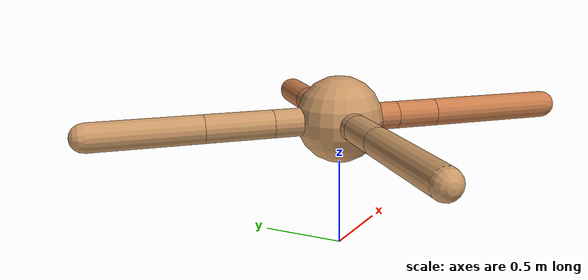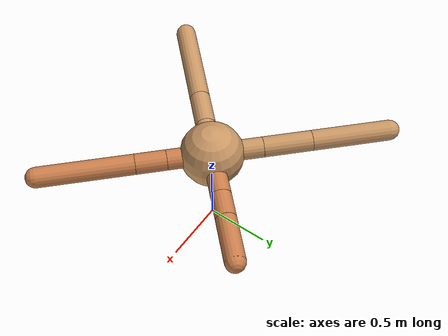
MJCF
<mujoco model="ant">
  <compiler angle="degree" coordinate="local" inertiafromgeom="true" />
  <option integrator="RK4" timestep="0.01" />
  <custom>
    <numeric data="0.0 0.0 0.55 1.0 0.0 0.0 0.0 0.0 1.0 0.0 -1.0 0.0 -1.0 0.0 1.0" name="init_qpos" />
  </custom>
  <default>
    <joint armature="1" damping="1" limited="true" />
    <geom conaffinity="0" condim="3" density="5.0" friction="1.5 0.1 0.1" margin="0.01" rgba="0.8 0.6 0.4 1" />
  </default>
  <worldbody>
    <body name="torso" pos="0 0 0.75">
      <geom name="torso_geom" pos="0 0 0" size="0.25" type="sphere" />

      <body name="front_left_leg" pos="0 0 0">
        <geom fromto="0.0 0.0 0.0 0.2813726981118417 0.2813726981118417 0.0" name="aux_1_geom" size="0.08" type="capsule" rgba=".8 .5 .3 1" />
        <body name="aux_1" pos="0.2813726981118417 0.2813726981118417 0.0">
          <joint axis="0 0 1" name="hip_1" pos="0.0 0.0 0.0" range="-40 40" type="hinge" />
          <geom fromto="0.0 0.0 0.0 0.1485124019603634 0.1485124019603634 0.0" name="left_leg_geom" size="0.08" type="capsule" rgba=".8 .5 .3 1" />
          <body pos="0.1485124019603634 0.1485124019603634 0.0" name="front_left_foot">
            <joint axis="-1 1 0" name="ankle_1" pos="0.0 0.0 0.0" range="30 100" type="hinge" />
            <geom fromto="0.0 0.0 0.0 0.261413813898362 0.261413813898362 0.0" name="left_ankle_geom" size="0.08" type="capsule" rgba=".8 .5 .3 1" />
          </body>
        </body>
      </body>
      <body name="front_right_leg" pos="0 0 0">
        <geom fromto="0.0 0.0 0.0 -0.27953094400905887 0.27953094400905887 0.0" name="aux_2_geom" size="0.08" type="capsule" />
        <body name="aux_2" pos="-0.27953094400905887 0.27953094400905887 0.0">
          <joint axis="0 0 1" name="hip_2" pos="0.0 0.0 0.0" range="-40 40" type="hinge" />
          <geom fromto="0.0 0.0 0.0 -0.27136505855474374 0.27136505855474374 0.0" name="right_leg_geom" size="0.08" type="capsule" />
          <body pos="-0.27136505855474374 0.27136505855474374 0.0" name="front_right_foot">
            <joint axis="1 1 0" name="ankle_2" pos="0.0 0.0 0.0" range="-100 -30" type="hinge" />
            <geom fromto="0.0 0.0 0.0 -0.437174529504133 0.437174529504133 0.0" name="right_ankle_geom" size="0.08" type="capsule" />
          </body>
        </body>
      </body>
      <body name="left_back_leg" pos="0 0 0">
        <geom fromto="0.0 0.0 0.0 -0.20626543592630023 -0.20626543592630023 0.0" name="aux_3_geom" size="0.08" type="capsule" />
        <body name="aux_3" pos="-0.20626543592630023 -0.20626543592630023 0.0">
          <joint axis="0 0 1" name="hip_3" pos="0.0 0.0 0.0" range="-40 40" type="hinge" />
          <geom fromto="0.0 0.0 0.0 -0.20325560711150337 -0.20325560711150337 0.0" name="back_leg_geom" size="0.08" type="capsule" />
          <body pos="-0.20325560711150337 -0.20325560711150337 0.0" name="left_back_foot">
            <joint axis="-1 1 0" name="ankle_3" pos="0.0 0.0 0.0" range="-100 -30" type="hinge" />
            <geom fromto="0.0 0.0 0.0 -0.5254289283264681 -0.5254289283264681 0.0" name="third_ankle_geom" size="0.08" type="capsule" />
          </body>
        </body>
      </body>
      <body name="right_back_leg" pos="0 0 0">
        <geom fromto="0.0 0.0 0.0 0.24652226456684417 -0.24652226456684417 0.0" name="aux_4_geom" size="0.08" type="capsule" rgba=".8 .5 .3 1" />
        <body name="aux_4" pos="0.24652226456684417 -0.24652226456684417 0.0">
          <joint axis="0 0 1" name="hip_4" pos="0.0 0.0 0.0" range="-40 40" type="hinge" />
          <geom fromto="0.0 0.0 0.0 0.1712212809358189 -0.1712212809358189 0.0" name="rightback_leg_geom" size="0.08" type="capsule" rgba=".8 .5 .3 1" />
          <body pos="0.1712212809358189 -0.1712212809358189 0.0" name="right_back_foot">
            <joint axis="1 1 0" name="ankle_4" pos="0.0 0.0 0.0" range="30 100" type="hinge" />
            <geom fromto="0.0 0.0 0.0 0.5278176309132085 -0.5278176309132085 0.0" name="fourth_ankle_geom" size="0.08" type="capsule" rgba=".8 .5 .3 1" />
          </body>
        </body>
      </body>
    </body>
  </worldbody>
  <actuator>
    <motor ctrllimited="true" ctrlrange="-1.0 1.0" joint="hip_4" gear="150" />
    <motor ctrllimited="true" ctrlrange="-1.0 1.0" joint="ankle_4" gear="150" />
    <motor ctrllimited="true" ctrlrange="-1.0 1.0" joint="hip_1" gear="150" />
    <motor ctrllimited="true" ctrlrange="-1.0 1.0" joint="ankle_1" gear="150" />
    <motor ctrllimited="true" ctrlrange="-1.0 1.0" joint="hip_2" gear="150" />
    <motor ctrllimited="true" ctrlrange="-1.0 1.0" joint="ankle_2" gear="150" />
    <motor ctrllimited="true" ctrlrange="-1.0 1.0" joint="hip_3" gear="150" />
    <motor ctrllimited="true" ctrlrange="-1.0 1.0" joint="ankle_3" gear="150" />
  </actuator>
</mujoco>
